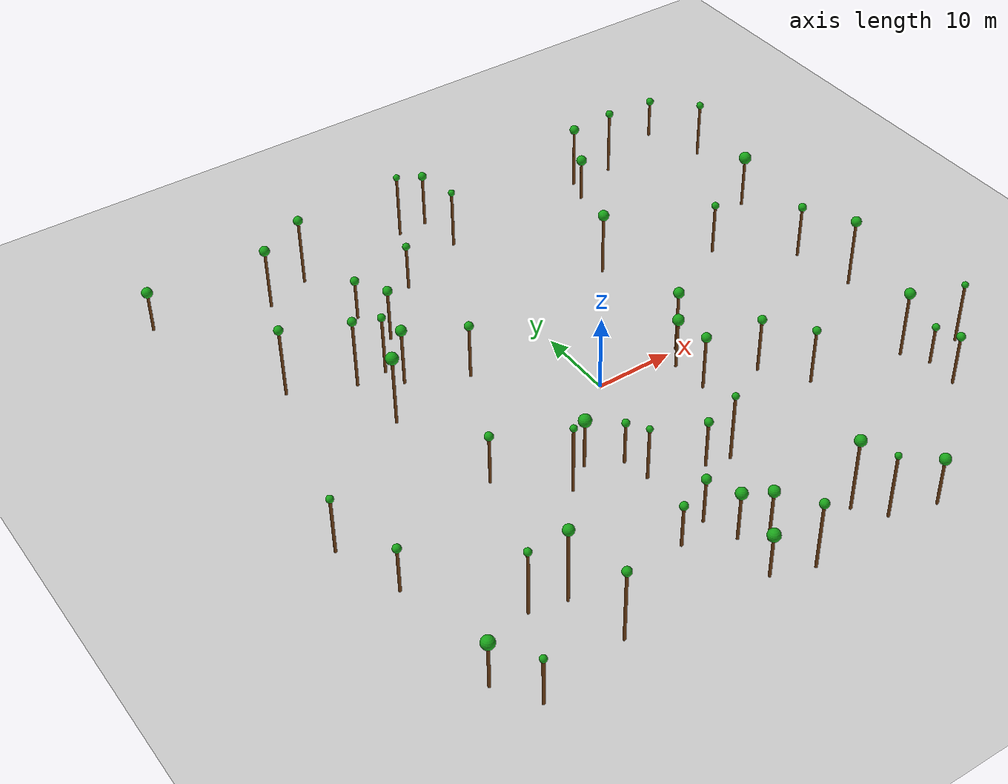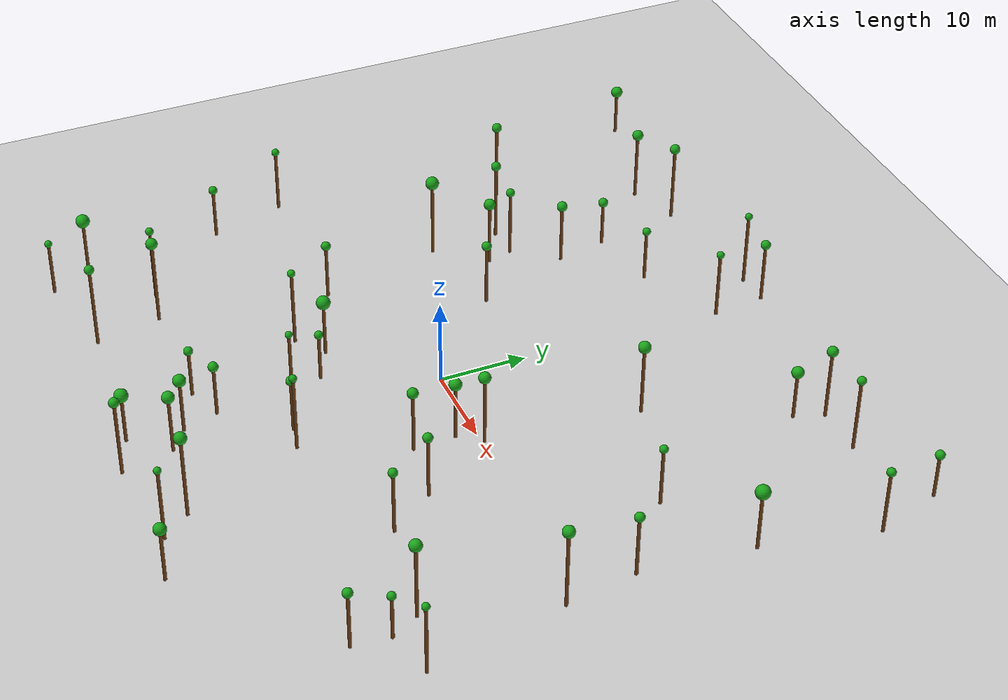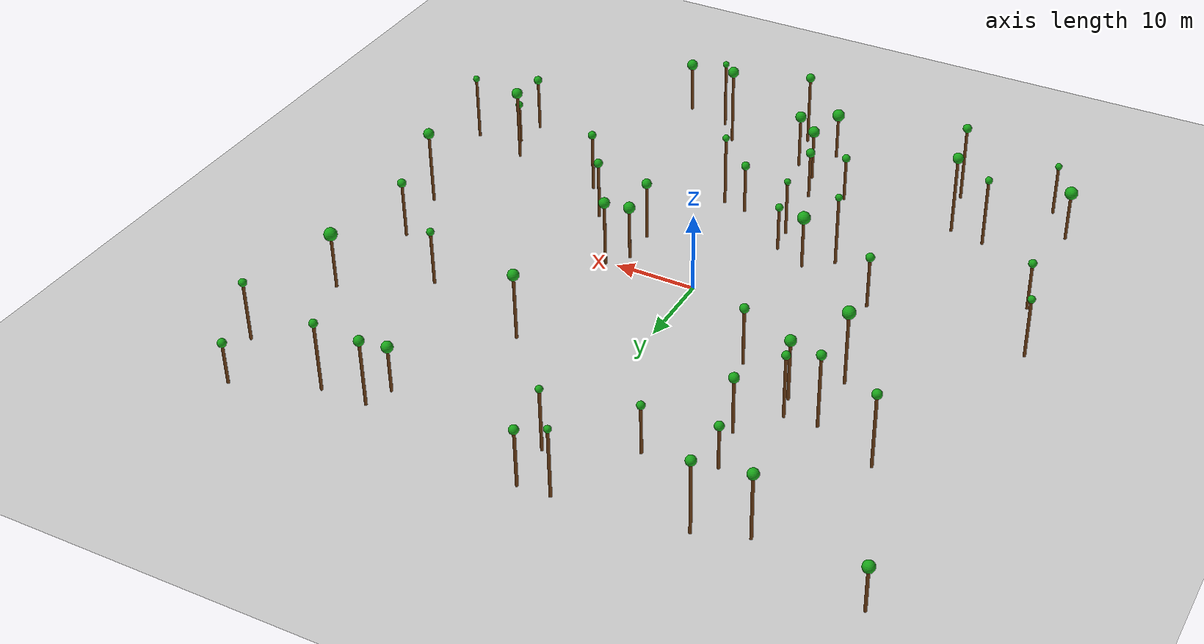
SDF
<sdf version="1.6">
 <world name="forest_world">
  <include><uri>model://sun</uri></include>
  <include><uri>model://ground_plane</uri></include>
  <model name="tree_286">
   <static>true</static>
   <link name="tree_link">
    <collision name="trunk_collision">
     <pose>-35.17 -29.68 3.05 0 0 0</pose>
     <geometry><cylinder><radius>0.18</radius><length>6.10</length></cylinder></geometry>
    </collision>
    <visual name="trunk_visual">
     <pose>-35.17 -29.68 3.05 0 0 0</pose>
     <geometry><cylinder><radius>0.18</radius><length>6.10</length></cylinder></geometry>
     <material><ambient>0.35 0.20 0.05 1</ambient><diffuse>0.45 0.25 0.08 1</diffuse></material>
    </visual>
    <visual name="leaf_visual">
     <pose>-35.17 -29.68 6.50 0 0 0</pose>
     <geometry><sphere><radius>0.79</radius></sphere></geometry>
     <material><ambient>0.05 0.45 0.05 1</ambient><diffuse>0.10 0.65 0.10 1</diffuse></material>
    </visual>
   </link>
  </model>
  <model name="tree_287">
   <static>true</static>
   <link name="tree_link">
    <collision name="trunk_collision">
     <pose>20.73 -13.46 3.73 0 0 0</pose>
     <geometry><cylinder><radius>0.18</radius><length>7.46</length></cylinder></geometry>
    </collision>
    <visual name="trunk_visual">
     <pose>20.73 -13.46 3.73 0 0 0</pose>
     <geometry><cylinder><radius>0.18</radius><length>7.46</length></cylinder></geometry>
     <material><ambient>0.35 0.20 0.05 1</ambient><diffuse>0.45 0.25 0.08 1</diffuse></material>
    </visual>
    <visual name="leaf_visual">
     <pose>20.73 -13.46 7.71 0 0 0</pose>
     <geometry><sphere><radius>0.51</radius></sphere></geometry>
     <material><ambient>0.05 0.45 0.05 1</ambient><diffuse>0.10 0.65 0.10 1</diffuse></material>
    </visual>
   </link>
  </model>
  <model name="tree_288">
   <static>true</static>
   <link name="tree_link">
    <collision name="trunk_collision">
     <pose>-32.03 -34.46 3.22 0 0 0</pose>
     <geometry><cylinder><radius>0.18</radius><length>6.44</length></cylinder></geometry>
    </collision>
    <visual name="trunk_visual">
     <pose>-32.03 -34.46 3.22 0 0 0</pose>
     <geometry><cylinder><radius>0.18</radius><length>6.44</length></cylinder></geometry>
     <material><ambient>0.35 0.20 0.05 1</ambient><diffuse>0.45 0.25 0.08 1</diffuse></material>
    </visual>
    <visual name="leaf_visual">
     <pose>-32.03 -34.46 6.65 0 0 0</pose>
     <geometry><sphere><radius>0.42</radius></sphere></geometry>
     <material><ambient>0.05 0.45 0.05 1</ambient><diffuse>0.10 0.65 0.10 1</diffuse></material>
    </visual>
   </link>
  </model>
  <model name="tree_289">
   <static>true</static>
   <link name="tree_link">
    <collision name="trunk_collision">
     <pose>-30.66 19.84 4.64 0 0 0</pose>
     <geometry><cylinder><radius>0.18</radius><length>9.29</length></cylinder></geometry>
    </collision>
    <visual name="trunk_visual">
     <pose>-30.66 19.84 4.64 0 0 0</pose>
     <geometry><cylinder><radius>0.18</radius><length>9.29</length></cylinder></geometry>
     <material><ambient>0.35 0.20 0.05 1</ambient><diffuse>0.45 0.25 0.08 1</diffuse></material>
    </visual>
    <visual name="leaf_visual">
     <pose>-30.66 19.84 9.58 0 0 0</pose>
     <geometry><sphere><radius>0.57</radius></sphere></geometry>
     <material><ambient>0.05 0.45 0.05 1</ambient><diffuse>0.10 0.65 0.10 1</diffuse></material>
    </visual>
   </link>
  </model>
  <model name="tree_290">
   <static>true</static>
   <link name="tree_link">
    <collision name="trunk_collision">
     <pose>-35.79 -13.96 3.02 0 0 0</pose>
     <geometry><cylinder><radius>0.18</radius><length>6.03</length></cylinder></geometry>
    </collision>
    <visual name="trunk_visual">
     <pose>-35.79 -13.96 3.02 0 0 0</pose>
     <geometry><cylinder><radius>0.18</radius><length>6.03</length></cylinder></geometry>
     <material><ambient>0.35 0.20 0.05 1</ambient><diffuse>0.45 0.25 0.08 1</diffuse></material>
    </visual>
    <visual name="leaf_visual">
     <pose>-35.79 -13.96 6.29 0 0 0</pose>
     <geometry><sphere><radius>0.51</radius></sphere></geometry>
     <material><ambient>0.05 0.45 0.05 1</ambient><diffuse>0.10 0.65 0.10 1</diffuse></material>
    </visual>
   </link>
  </model>
  <model name="tree_291">
   <static>true</static>
   <link name="tree_link">
    <collision name="trunk_collision">
     <pose>-2.53 -28.17 3.18 0 0 0</pose>
     <geometry><cylinder><radius>0.18</radius><length>6.35</length></cylinder></geometry>
    </collision>
    <visual name="trunk_visual">
     <pose>-2.53 -28.17 3.18 0 0 0</pose>
     <geometry><cylinder><radius>0.18</radius><length>6.35</length></cylinder></geometry>
     <material><ambient>0.35 0.20 0.05 1</ambient><diffuse>0.45 0.25 0.08 1</diffuse></material>
    </visual>
    <visual name="leaf_visual">
     <pose>-2.53 -28.17 6.71 0 0 0</pose>
     <geometry><sphere><radius>0.71</radius></sphere></geometry>
     <material><ambient>0.05 0.45 0.05 1</ambient><diffuse>0.10 0.65 0.10 1</diffuse></material>
    </visual>
   </link>
  </model>
  <model name="tree_292">
   <static>true</static>
   <link name="tree_link">
    <collision name="trunk_collision">
     <pose>18.57 -36.55 3.14 0 0 0</pose>
     <geometry><cylinder><radius>0.18</radius><length>6.28</length></cylinder></geometry>
    </collision>
    <visual name="trunk_visual">
     <pose>18.57 -36.55 3.14 0 0 0</pose>
     <geometry><cylinder><radius>0.18</radius><length>6.28</length></cylinder></geometry>
     <material><ambient>0.35 0.20 0.05 1</ambient><diffuse>0.45 0.25 0.08 1</diffuse></material>
    </visual>
    <visual name="leaf_visual">
     <pose>18.57 -36.55 6.62 0 0 0</pose>
     <geometry><sphere><radius>0.69</radius></sphere></geometry>
     <material><ambient>0.05 0.45 0.05 1</ambient><diffuse>0.10 0.65 0.10 1</diffuse></material>
    </visual>
   </link>
  </model>
  <model name="tree_293">
   <static>true</static>
   <link name="tree_link">
    <collision name="trunk_collision">
     <pose>16.99 -8.25 3.66 0 0 0</pose>
     <geometry><cylinder><radius>0.18</radius><length>7.33</length></cylinder></geometry>
    </collision>
    <visual name="trunk_visual">
     <pose>16.99 -8.25 3.66 0 0 0</pose>
     <geometry><cylinder><radius>0.18</radius><length>7.33</length></cylinder></geometry>
     <material><ambient>0.35 0.20 0.05 1</ambient><diffuse>0.45 0.25 0.08 1</diffuse></material>
    </visual>
    <visual name="leaf_visual">
     <pose>16.99 -8.25 7.60 0 0 0</pose>
     <geometry><sphere><radius>0.55</radius></sphere></geometry>
     <material><ambient>0.05 0.45 0.05 1</ambient><diffuse>0.10 0.65 0.10 1</diffuse></material>
    </visual>
   </link>
  </model>
  <model name="tree_294">
   <static>true</static>
   <link name="tree_link">
    <collision name="trunk_collision">
     <pose>9.75 -7.00 3.61 0 0 0</pose>
     <geometry><cylinder><radius>0.18</radius><length>7.22</length></cylinder></geometry>
    </collision>
    <visual name="trunk_visual">
     <pose>9.75 -7.00 3.61 0 0 0</pose>
     <geometry><cylinder><radius>0.18</radius><length>7.22</length></cylinder></geometry>
     <material><ambient>0.35 0.20 0.05 1</ambient><diffuse>0.45 0.25 0.08 1</diffuse></material>
    </visual>
    <visual name="leaf_visual">
     <pose>9.75 -7.00 7.53 0 0 0</pose>
     <geometry><sphere><radius>0.61</radius></sphere></geometry>
     <material><ambient>0.05 0.45 0.05 1</ambient><diffuse>0.10 0.65 0.10 1</diffuse></material>
    </visual>
   </link>
  </model>
  <model name="tree_295">
   <static>true</static>
   <link name="tree_link">
    <collision name="trunk_collision">
     <pose>-9.38 -9.84 3.22 0 0 0</pose>
     <geometry><cylinder><radius>0.18</radius><length>6.45</length></cylinder></geometry>
    </collision>
    <visual name="trunk_visual">
     <pose>-9.38 -9.84 3.22 0 0 0</pose>
     <geometry><cylinder><radius>0.18</radius><length>6.45</length></cylinder></geometry>
     <material><ambient>0.35 0.20 0.05 1</ambient><diffuse>0.45 0.25 0.08 1</diffuse></material>
    </visual>
    <visual name="leaf_visual">
     <pose>-9.38 -9.84 6.84 0 0 0</pose>
     <geometry><sphere><radius>0.79</radius></sphere></geometry>
     <material><ambient>0.05 0.45 0.05 1</ambient><diffuse>0.10 0.65 0.10 1</diffuse></material>
    </visual>
   </link>
  </model>
  <model name="tree_296">
   <static>true</static>
   <link name="tree_link">
    <collision name="trunk_collision">
     <pose>-3.91 -24.09 3.00 0 0 0</pose>
     <geometry><cylinder><radius>0.18</radius><length>6.00</length></cylinder></geometry>
    </collision>
    <visual name="trunk_visual">
     <pose>-3.91 -24.09 3.00 0 0 0</pose>
     <geometry><cylinder><radius>0.18</radius><length>6.00</length></cylinder></geometry>
     <material><ambient>0.35 0.20 0.05 1</ambient><diffuse>0.45 0.25 0.08 1</diffuse></material>
    </visual>
    <visual name="leaf_visual">
     <pose>-3.91 -24.09 6.29 0 0 0</pose>
     <geometry><sphere><radius>0.57</radius></sphere></geometry>
     <material><ambient>0.05 0.45 0.05 1</ambient><diffuse>0.10 0.65 0.10 1</diffuse></material>
    </visual>
   </link>
  </model>
  <model name="tree_297">
   <static>true</static>
   <link name="tree_link">
    <collision name="trunk_collision">
     <pose>9.51 -2.18 3.33 0 0 0</pose>
     <geometry><cylinder><radius>0.18</radius><length>6.67</length></cylinder></geometry>
    </collision>
    <visual name="trunk_visual">
     <pose>9.51 -2.18 3.33 0 0 0</pose>
     <geometry><cylinder><radius>0.18</radius><length>6.67</length></cylinder></geometry>
     <material><ambient>0.35 0.20 0.05 1</ambient><diffuse>0.45 0.25 0.08 1</diffuse></material>
    </visual>
    <visual name="leaf_visual">
     <pose>9.51 -2.18 7.02 0 0 0</pose>
     <geometry><sphere><radius>0.71</radius></sphere></geometry>
     <material><ambient>0.05 0.45 0.05 1</ambient><diffuse>0.10 0.65 0.10 1</diffuse></material>
    </visual>
   </link>
  </model>
  <model name="tree_298">
   <static>true</static>
   <link name="tree_link">
    <collision name="trunk_collision">
     <pose>13.29 17.64 4.13 0 0 0</pose>
     <geometry><cylinder><radius>0.18</radius><length>8.27</length></cylinder></geometry>
    </collision>
    <visual name="trunk_visual">
     <pose>13.29 17.64 4.13 0 0 0</pose>
     <geometry><cylinder><radius>0.18</radius><length>8.27</length></cylinder></geometry>
     <material><ambient>0.35 0.20 0.05 1</ambient><diffuse>0.45 0.25 0.08 1</diffuse></material>
    </visual>
    <visual name="leaf_visual">
     <pose>13.29 17.64 8.61 0 0 0</pose>
     <geometry><sphere><radius>0.69</radius></sphere></geometry>
     <material><ambient>0.05 0.45 0.05 1</ambient><diffuse>0.10 0.65 0.10 1</diffuse></material>
    </visual>
   </link>
  </model>
  <model name="tree_299">
   <static>true</static>
   <link name="tree_link">
    <collision name="trunk_collision">
     <pose>-22.68 8.32 4.57 0 0 0</pose>
     <geometry><cylinder><radius>0.18</radius><length>9.15</length></cylinder></geometry>
    </collision>
    <visual name="trunk_visual">
     <pose>-22.68 8.32 4.57 0 0 0</pose>
     <geometry><cylinder><radius>0.18</radius><length>9.15</length></cylinder></geometry>
     <material><ambient>0.35 0.20 0.05 1</ambient><diffuse>0.45 0.25 0.08 1</diffuse></material>
    </visual>
    <visual name="leaf_visual">
     <pose>-22.68 8.32 9.54 0 0 0</pose>
     <geometry><sphere><radius>0.77</radius></sphere></geometry>
     <material><ambient>0.05 0.45 0.05 1</ambient><diffuse>0.10 0.65 0.10 1</diffuse></material>
    </visual>
   </link>
  </model>
  <model name="tree_300">
   <static>true</static>
   <link name="tree_link">
    <collision name="trunk_collision">
     <pose>-16.71 27.29 2.68 0 0 0</pose>
     <geometry><cylinder><radius>0.18</radius><length>5.37</length></cylinder></geometry>
    </collision>
    <visual name="trunk_visual">
     <pose>-16.71 27.29 2.68 0 0 0</pose>
     <geometry><cylinder><radius>0.18</radius><length>5.37</length></cylinder></geometry>
     <material><ambient>0.35 0.20 0.05 1</ambient><diffuse>0.45 0.25 0.08 1</diffuse></material>
    </visual>
    <visual name="leaf_visual">
     <pose>-16.71 27.29 5.64 0 0 0</pose>
     <geometry><sphere><radius>0.55</radius></sphere></geometry>
     <material><ambient>0.05 0.45 0.05 1</ambient><diffuse>0.10 0.65 0.10 1</diffuse></material>
    </visual>
   </link>
  </model>
  <model name="tree_301">
   <static>true</static>
   <link name="tree_link">
    <collision name="trunk_collision">
     <pose>37.01 39.07 2.58 0 0 0</pose>
     <geometry><cylinder><radius>0.18</radius><length>5.16</length></cylinder></geometry>
    </collision>
    <visual name="trunk_visual">
     <pose>37.01 39.07 2.58 0 0 0</pose>
     <geometry><cylinder><radius>0.18</radius><length>5.16</length></cylinder></geometry>
     <material><ambient>0.35 0.20 0.05 1</ambient><diffuse>0.45 0.25 0.08 1</diffuse></material>
    </visual>
    <visual name="leaf_visual">
     <pose>37.01 39.07 5.42 0 0 0</pose>
     <geometry><sphere><radius>0.53</radius></sphere></geometry>
     <material><ambient>0.05 0.45 0.05 1</ambient><diffuse>0.10 0.65 0.10 1</diffuse></material>
    </visual>
   </link>
  </model>
  <model name="tree_302">
   <static>true</static>
   <link name="tree_link">
    <collision name="trunk_collision">
     <pose>10.35 -31.74 4.85 0 0 0</pose>
     <geometry><cylinder><radius>0.18</radius><length>9.69</length></cylinder></geometry>
    </collision>
    <visual name="trunk_visual">
     <pose>10.35 -31.74 4.85 0 0 0</pose>
     <geometry><cylinder><radius>0.18</radius><length>9.69</length></cylinder></geometry>
     <material><ambient>0.35 0.20 0.05 1</ambient><diffuse>0.45 0.25 0.08 1</diffuse></material>
    </visual>
    <visual name="leaf_visual">
     <pose>10.35 -31.74 10.04 0 0 0</pose>
     <geometry><sphere><radius>0.69</radius></sphere></geometry>
     <material><ambient>0.05 0.45 0.05 1</ambient><diffuse>0.10 0.65 0.10 1</diffuse></material>
    </visual>
   </link>
  </model>
  <model name="tree_303">
   <static>true</static>
   <link name="tree_link">
    <collision name="trunk_collision">
     <pose>21.51 35.35 4.14 0 0 0</pose>
     <geometry><cylinder><radius>0.18</radius><length>8.29</length></cylinder></geometry>
    </collision>
    <visual name="trunk_visual">
     <pose>21.51 35.35 4.14 0 0 0</pose>
     <geometry><cylinder><radius>0.18</radius><length>8.29</length></cylinder></geometry>
     <material><ambient>0.35 0.20 0.05 1</ambient><diffuse>0.45 0.25 0.08 1</diffuse></material>
    </visual>
    <visual name="leaf_visual">
     <pose>21.51 35.35 8.59 0 0 0</pose>
     <geometry><sphere><radius>0.61</radius></sphere></geometry>
     <material><ambient>0.05 0.45 0.05 1</ambient><diffuse>0.10 0.65 0.10 1</diffuse></material>
    </visual>
   </link>
  </model>
  <model name="tree_304">
   <static>true</static>
   <link name="tree_link">
    <collision name="trunk_collision">
     <pose>36.95 18.77 3.47 0 0 0</pose>
     <geometry><cylinder><radius>0.18</radius><length>6.94</length></cylinder></geometry>
    </collision>
    <visual name="trunk_visual">
     <pose>36.95 18.77 3.47 0 0 0</pose>
     <geometry><cylinder><radius>0.18</radius><length>6.94</length></cylinder></geometry>
     <material><ambient>0.35 0.20 0.05 1</ambient><diffuse>0.45 0.25 0.08 1</diffuse></material>
    </visual>
    <visual name="leaf_visual">
     <pose>36.95 18.77 7.34 0 0 0</pose>
     <geometry><sphere><radius>0.80</radius></sphere></geometry>
     <material><ambient>0.05 0.45 0.05 1</ambient><diffuse>0.10 0.65 0.10 1</diffuse></material>
    </visual>
   </link>
  </model>
  <model name="tree_305">
   <static>true</static>
   <link name="tree_link">
    <collision name="trunk_collision">
     <pose>-19.32 -5.94 3.28 0 0 0</pose>
     <geometry><cylinder><radius>0.18</radius><length>6.56</length></cylinder></geometry>
    </collision>
    <visual name="trunk_visual">
     <pose>-19.32 -5.94 3.28 0 0 0</pose>
     <geometry><cylinder><radius>0.18</radius><length>6.56</length></cylinder></geometry>
     <material><ambient>0.35 0.20 0.05 1</ambient><diffuse>0.45 0.25 0.08 1</diffuse></material>
    </visual>
    <visual name="leaf_visual">
     <pose>-19.32 -5.94 6.83 0 0 0</pose>
     <geometry><sphere><radius>0.54</radius></sphere></geometry>
     <material><ambient>0.05 0.45 0.05 1</ambient><diffuse>0.10 0.65 0.10 1</diffuse></material>
    </visual>
   </link>
  </model>
  <model name="tree_306">
   <static>true</static>
   <link name="tree_link">
    <collision name="trunk_collision">
     <pose>-4.77 -15.36 3.56 0 0 0</pose>
     <geometry><cylinder><radius>0.18</radius><length>7.13</length></cylinder></geometry>
    </collision>
    <visual name="trunk_visual">
     <pose>-4.77 -15.36 3.56 0 0 0</pose>
     <geometry><cylinder><radius>0.18</radius><length>7.13</length></cylinder></geometry>
     <material><ambient>0.35 0.20 0.05 1</ambient><diffuse>0.45 0.25 0.08 1</diffuse></material>
    </visual>
    <visual name="leaf_visual">
     <pose>-4.77 -15.36 7.34 0 0 0</pose>
     <geometry><sphere><radius>0.41</radius></sphere></geometry>
     <material><ambient>0.05 0.45 0.05 1</ambient><diffuse>0.10 0.65 0.10 1</diffuse></material>
    </visual>
   </link>
  </model>
  <model name="tree_307">
   <static>true</static>
   <link name="tree_link">
    <collision name="trunk_collision">
     <pose>-3.51 39.02 4.31 0 0 0</pose>
     <geometry><cylinder><radius>0.18</radius><length>8.62</length></cylinder></geometry>
    </collision>
    <visual name="trunk_visual">
     <pose>-3.51 39.02 4.31 0 0 0</pose>
     <geometry><cylinder><radius>0.18</radius><length>8.62</length></cylinder></geometry>
     <material><ambient>0.35 0.20 0.05 1</ambient><diffuse>0.45 0.25 0.08 1</diffuse></material>
    </visual>
    <visual name="leaf_visual">
     <pose>-3.51 39.02 8.83 0 0 0</pose>
     <geometry><sphere><radius>0.42</radius></sphere></geometry>
     <material><ambient>0.05 0.45 0.05 1</ambient><diffuse>0.10 0.65 0.10 1</diffuse></material>
    </visual>
   </link>
  </model>
  <model name="tree_308">
   <static>true</static>
   <link name="tree_link">
    <collision name="trunk_collision">
     <pose>11.44 0.30 4.10 0 0 0</pose>
     <geometry><cylinder><radius>0.18</radius><length>8.21</length></cylinder></geometry>
    </collision>
    <visual name="trunk_visual">
     <pose>11.44 0.30 4.10 0 0 0</pose>
     <geometry><cylinder><radius>0.18</radius><length>8.21</length></cylinder></geometry>
     <material><ambient>0.35 0.20 0.05 1</ambient><diffuse>0.45 0.25 0.08 1</diffuse></material>
    </visual>
    <visual name="leaf_visual">
     <pose>11.44 0.30 8.54 0 0 0</pose>
     <geometry><sphere><radius>0.67</radius></sphere></geometry>
     <material><ambient>0.05 0.45 0.05 1</ambient><diffuse>0.10 0.65 0.10 1</diffuse></material>
    </visual>
   </link>
  </model>
  <model name="tree_309">
   <static>true</static>
   <link name="tree_link">
    <collision name="trunk_collision">
     <pose>39.98 -17.72 4.12 0 0 0</pose>
     <geometry><cylinder><radius>0.18</radius><length>8.23</length></cylinder></geometry>
    </collision>
    <visual name="trunk_visual">
     <pose>39.98 -17.72 4.12 0 0 0</pose>
     <geometry><cylinder><radius>0.18</radius><length>8.23</length></cylinder></geometry>
     <material><ambient>0.35 0.20 0.05 1</ambient><diffuse>0.45 0.25 0.08 1</diffuse></material>
    </visual>
    <visual name="leaf_visual">
     <pose>39.98 -17.72 8.44 0 0 0</pose>
     <geometry><sphere><radius>0.42</radius></sphere></geometry>
     <material><ambient>0.05 0.45 0.05 1</ambient><diffuse>0.10 0.65 0.10 1</diffuse></material>
    </visual>
   </link>
  </model>
  <model name="tree_310">
   <static>true</static>
   <link name="tree_link">
    <collision name="trunk_collision">
     <pose>-38.17 39.42 2.70 0 0 0</pose>
     <geometry><cylinder><radius>0.18</radius><length>5.40</length></cylinder></geometry>
    </collision>
    <visual name="trunk_visual">
     <pose>-38.17 39.42 2.70 0 0 0</pose>
     <geometry><cylinder><radius>0.18</radius><length>5.40</length></cylinder></geometry>
     <material><ambient>0.35 0.20 0.05 1</ambient><diffuse>0.45 0.25 0.08 1</diffuse></material>
    </visual>
    <visual name="leaf_visual">
     <pose>-38.17 39.42 5.74 0 0 0</pose>
     <geometry><sphere><radius>0.68</radius></sphere></geometry>
     <material><ambient>0.05 0.45 0.05 1</ambient><diffuse>0.10 0.65 0.10 1</diffuse></material>
    </visual>
   </link>
  </model>
  <model name="tree_311">
   <static>true</static>
   <link name="tree_link">
    <collision name="trunk_collision">
     <pose>-8.04 -25.56 2.81 0 0 0</pose>
     <geometry><cylinder><radius>0.18</radius><length>5.62</length></cylinder></geometry>
    </collision>
    <visual name="trunk_visual">
     <pose>-8.04 -25.56 2.81 0 0 0</pose>
     <geometry><cylinder><radius>0.18</radius><length>5.62</length></cylinder></geometry>
     <material><ambient>0.35 0.20 0.05 1</ambient><diffuse>0.45 0.25 0.08 1</diffuse></material>
    </visual>
    <visual name="leaf_visual">
     <pose>-8.04 -25.56 5.88 0 0 0</pose>
     <geometry><sphere><radius>0.51</radius></sphere></geometry>
     <material><ambient>0.05 0.45 0.05 1</ambient><diffuse>0.10 0.65 0.10 1</diffuse></material>
    </visual>
   </link>
  </model>
  <model name="tree_312">
   <static>true</static>
   <link name="tree_link">
    <collision name="trunk_collision">
     <pose>1.74 -17.46 3.12 0 0 0</pose>
     <geometry><cylinder><radius>0.18</radius><length>6.24</length></cylinder></geometry>
    </collision>
    <visual name="trunk_visual">
     <pose>1.74 -17.46 3.12 0 0 0</pose>
     <geometry><cylinder><radius>0.18</radius><length>6.24</length></cylinder></geometry>
     <material><ambient>0.35 0.20 0.05 1</ambient><diffuse>0.45 0.25 0.08 1</diffuse></material>
    </visual>
    <visual name="leaf_visual">
     <pose>1.74 -17.46 6.50 0 0 0</pose>
     <geometry><sphere><radius>0.53</radius></sphere></geometry>
     <material><ambient>0.05 0.45 0.05 1</ambient><diffuse>0.10 0.65 0.10 1</diffuse></material>
    </visual>
   </link>
  </model>
  <model name="tree_313">
   <static>true</static>
   <link name="tree_link">
    <collision name="trunk_collision">
     <pose>-3.25 -34.26 2.85 0 0 0</pose>
     <geometry><cylinder><radius>0.18</radius><length>5.70</length></cylinder></geometry>
    </collision>
    <visual name="trunk_visual">
     <pose>-3.25 -34.26 2.85 0 0 0</pose>
     <geometry><cylinder><radius>0.18</radius><length>5.70</length></cylinder></geometry>
     <material><ambient>0.35 0.20 0.05 1</ambient><diffuse>0.45 0.25 0.08 1</diffuse></material>
    </visual>
    <visual name="leaf_visual">
     <pose>-3.25 -34.26 6.09 0 0 0</pose>
     <geometry><sphere><radius>0.77</radius></sphere></geometry>
     <material><ambient>0.05 0.45 0.05 1</ambient><diffuse>0.10 0.65 0.10 1</diffuse></material>
    </visual>
   </link>
  </model>
  <model name="tree_314">
   <static>true</static>
   <link name="tree_link">
    <collision name="trunk_collision">
     <pose>12.91 -34.92 4.37 0 0 0</pose>
     <geometry><cylinder><radius>0.18</radius><length>8.73</length></cylinder></geometry>
    </collision>
    <visual name="trunk_visual">
     <pose>12.91 -34.92 4.37 0 0 0</pose>
     <geometry><cylinder><radius>0.18</radius><length>8.73</length></cylinder></geometry>
     <material><ambient>0.35 0.20 0.05 1</ambient><diffuse>0.45 0.25 0.08 1</diffuse></material>
    </visual>
    <visual name="leaf_visual">
     <pose>12.91 -34.92 8.94 0 0 0</pose>
     <geometry><sphere><radius>0.41</radius></sphere></geometry>
     <material><ambient>0.05 0.45 0.05 1</ambient><diffuse>0.10 0.65 0.10 1</diffuse></material>
    </visual>
   </link>
  </model>
  <model name="tree_315">
   <static>true</static>
   <link name="tree_link">
    <collision name="trunk_collision">
     <pose>39.63 31.51 3.75 0 0 0</pose>
     <geometry><cylinder><radius>0.18</radius><length>7.51</length></cylinder></geometry>
    </collision>
    <visual name="trunk_visual">
     <pose>39.63 31.51 3.75 0 0 0</pose>
     <geometry><cylinder><radius>0.18</radius><length>7.51</length></cylinder></geometry>
     <material><ambient>0.35 0.20 0.05 1</ambient><diffuse>0.45 0.25 0.08 1</diffuse></material>
    </visual>
    <visual name="leaf_visual">
     <pose>39.63 31.51 7.75 0 0 0</pose>
     <geometry><sphere><radius>0.49</radius></sphere></geometry>
     <material><ambient>0.05 0.45 0.05 1</ambient><diffuse>0.10 0.65 0.10 1</diffuse></material>
    </visual>
   </link>
  </model>
  <model name="tree_316">
   <static>true</static>
   <link name="tree_link">
    <collision name="trunk_collision">
     <pose>-22.38 -24.98 5.00 0 0 0</pose>
     <geometry><cylinder><radius>0.18</radius><length>9.99</length></cylinder></geometry>
    </collision>
    <visual name="trunk_visual">
     <pose>-22.38 -24.98 5.00 0 0 0</pose>
     <geometry><cylinder><radius>0.18</radius><length>9.99</length></cylinder></geometry>
     <material><ambient>0.35 0.20 0.05 1</ambient><diffuse>0.45 0.25 0.08 1</diffuse></material>
    </visual>
    <visual name="leaf_visual">
     <pose>-22.38 -24.98 10.32 0 0 0</pose>
     <geometry><sphere><radius>0.66</radius></sphere></geometry>
     <material><ambient>0.05 0.45 0.05 1</ambient><diffuse>0.10 0.65 0.10 1</diffuse></material>
    </visual>
   </link>
  </model>
  <model name="tree_317">
   <static>true</static>
   <link name="tree_link">
    <collision name="trunk_collision">
     <pose>36.97 -2.06 4.60 0 0 0</pose>
     <geometry><cylinder><radius>0.18</radius><length>9.20</length></cylinder></geometry>
    </collision>
    <visual name="trunk_visual">
     <pose>36.97 -2.06 4.60 0 0 0</pose>
     <geometry><cylinder><radius>0.18</radius><length>9.20</length></cylinder></geometry>
     <material><ambient>0.35 0.20 0.05 1</ambient><diffuse>0.45 0.25 0.08 1</diffuse></material>
    </visual>
    <visual name="leaf_visual">
     <pose>36.97 -2.06 9.53 0 0 0</pose>
     <geometry><sphere><radius>0.66</radius></sphere></geometry>
     <material><ambient>0.05 0.45 0.05 1</ambient><diffuse>0.10 0.65 0.10 1</diffuse></material>
    </visual>
   </link>
  </model>
  <model name="tree_318">
   <static>true</static>
   <link name="tree_link">
    <collision name="trunk_collision">
     <pose>-18.36 13.65 3.78 0 0 0</pose>
     <geometry><cylinder><radius>0.18</radius><length>7.56</length></cylinder></geometry>
    </collision>
    <visual name="trunk_visual">
     <pose>-18.36 13.65 3.78 0 0 0</pose>
     <geometry><cylinder><radius>0.18</radius><length>7.56</length></cylinder></geometry>
     <material><ambient>0.35 0.20 0.05 1</ambient><diffuse>0.45 0.25 0.08 1</diffuse></material>
    </visual>
    <visual name="leaf_visual">
     <pose>-18.36 13.65 7.90 0 0 0</pose>
     <geometry><sphere><radius>0.67</radius></sphere></geometry>
     <material><ambient>0.05 0.45 0.05 1</ambient><diffuse>0.10 0.65 0.10 1</diffuse></material>
    </visual>
   </link>
  </model>
  <model name="tree_319">
   <static>true</static>
   <link name="tree_link">
    <collision name="trunk_collision">
     <pose>-15.52 21.46 3.53 0 0 0</pose>
     <geometry><cylinder><radius>0.18</radius><length>7.05</length></cylinder></geometry>
    </collision>
    <visual name="trunk_visual">
     <pose>-15.52 21.46 3.53 0 0 0</pose>
     <geometry><cylinder><radius>0.18</radius><length>7.05</length></cylinder></geometry>
     <material><ambient>0.35 0.20 0.05 1</ambient><diffuse>0.45 0.25 0.08 1</diffuse></material>
    </visual>
    <visual name="leaf_visual">
     <pose>-15.52 21.46 7.35 0 0 0</pose>
     <geometry><sphere><radius>0.60</radius></sphere></geometry>
     <material><ambient>0.05 0.45 0.05 1</ambient><diffuse>0.10 0.65 0.10 1</diffuse></material>
    </visual>
   </link>
  </model>
  <model name="tree_320">
   <static>true</static>
   <link name="tree_link">
    <collision name="trunk_collision">
     <pose>32.79 -15.84 4.42 0 0 0</pose>
     <geometry><cylinder><radius>0.18</radius><length>8.84</length></cylinder></geometry>
    </collision>
    <visual name="trunk_visual">
     <pose>32.79 -15.84 4.42 0 0 0</pose>
     <geometry><cylinder><radius>0.18</radius><length>8.84</length></cylinder></geometry>
     <material><ambient>0.35 0.20 0.05 1</ambient><diffuse>0.45 0.25 0.08 1</diffuse></material>
    </visual>
    <visual name="leaf_visual">
     <pose>32.79 -15.84 9.17 0 0 0</pose>
     <geometry><sphere><radius>0.68</radius></sphere></geometry>
     <material><ambient>0.05 0.45 0.05 1</ambient><diffuse>0.10 0.65 0.10 1</diffuse></material>
    </visual>
   </link>
  </model>
  <model name="tree_321">
   <static>true</static>
   <link name="tree_link">
    <collision name="trunk_collision">
     <pose>-19.18 16.59 3.99 0 0 0</pose>
     <geometry><cylinder><radius>0.18</radius><length>7.99</length></cylinder></geometry>
    </collision>
    <visual name="trunk_visual">
     <pose>-19.18 16.59 3.99 0 0 0</pose>
     <geometry><cylinder><radius>0.18</radius><length>7.99</length></cylinder></geometry>
     <material><ambient>0.35 0.20 0.05 1</ambient><diffuse>0.45 0.25 0.08 1</diffuse></material>
    </visual>
    <visual name="leaf_visual">
     <pose>-19.18 16.59 8.24 0 0 0</pose>
     <geometry><sphere><radius>0.50</radius></sphere></geometry>
     <material><ambient>0.05 0.45 0.05 1</ambient><diffuse>0.10 0.65 0.10 1</diffuse></material>
    </visual>
   </link>
  </model>
  <model name="tree_322">
   <static>true</static>
   <link name="tree_link">
    <collision name="trunk_collision">
     <pose>-20.77 -32.48 4.84 0 0 0</pose>
     <geometry><cylinder><radius>0.18</radius><length>9.68</length></cylinder></geometry>
    </collision>
    <visual name="trunk_visual">
     <pose>-20.77 -32.48 4.84 0 0 0</pose>
     <geometry><cylinder><radius>0.18</radius><length>9.68</length></cylinder></geometry>
     <material><ambient>0.35 0.20 0.05 1</ambient><diffuse>0.45 0.25 0.08 1</diffuse></material>
    </visual>
    <visual name="leaf_visual">
     <pose>-20.77 -32.48 9.96 0 0 0</pose>
     <geometry><sphere><radius>0.55</radius></sphere></geometry>
     <material><ambient>0.05 0.45 0.05 1</ambient><diffuse>0.10 0.65 0.10 1</diffuse></material>
    </visual>
   </link>
  </model>
  <model name="tree_323">
   <static>true</static>
   <link name="tree_link">
    <collision name="trunk_collision">
     <pose>-8.50 28.80 3.06 0 0 0</pose>
     <geometry><cylinder><radius>0.18</radius><length>6.12</length></cylinder></geometry>
    </collision>
    <visual name="trunk_visual">
     <pose>-8.50 28.80 3.06 0 0 0</pose>
     <geometry><cylinder><radius>0.18</radius><length>6.12</length></cylinder></geometry>
     <material><ambient>0.35 0.20 0.05 1</ambient><diffuse>0.45 0.25 0.08 1</diffuse></material>
    </visual>
    <visual name="leaf_visual">
     <pose>-8.50 28.80 6.36 0 0 0</pose>
     <geometry><sphere><radius>0.48</radius></sphere></geometry>
     <material><ambient>0.05 0.45 0.05 1</ambient><diffuse>0.10 0.65 0.10 1</diffuse></material>
    </visual>
   </link>
  </model>
  <model name="tree_324">
   <static>true</static>
   <link name="tree_link">
    <collision name="trunk_collision">
     <pose>0.16 -30.16 3.38 0 0 0</pose>
     <geometry><cylinder><radius>0.18</radius><length>6.75</length></cylinder></geometry>
    </collision>
    <visual name="trunk_visual">
     <pose>0.16 -30.16 3.38 0 0 0</pose>
     <geometry><cylinder><radius>0.18</radius><length>6.75</length></cylinder></geometry>
     <material><ambient>0.35 0.20 0.05 1</ambient><diffuse>0.45 0.25 0.08 1</diffuse></material>
    </visual>
    <visual name="leaf_visual">
     <pose>0.16 -30.16 7.10 0 0 0</pose>
     <geometry><sphere><radius>0.69</radius></sphere></geometry>
     <material><ambient>0.05 0.45 0.05 1</ambient><diffuse>0.10 0.65 0.10 1</diffuse></material>
    </visual>
   </link>
  </model>
  <model name="tree_325">
   <static>true</static>
   <link name="tree_link">
    <collision name="trunk_collision">
     <pose>-26.66 -24.06 4.38 0 0 0</pose>
     <geometry><cylinder><radius>0.18</radius><length>8.76</length></cylinder></geometry>
    </collision>
    <visual name="trunk_visual">
     <pose>-26.66 -24.06 4.38 0 0 0</pose>
     <geometry><cylinder><radius>0.18</radius><length>8.76</length></cylinder></geometry>
     <material><ambient>0.35 0.20 0.05 1</ambient><diffuse>0.45 0.25 0.08 1</diffuse></material>
    </visual>
    <visual name="leaf_visual">
     <pose>-26.66 -24.06 8.99 0 0 0</pose>
     <geometry><sphere><radius>0.46</radius></sphere></geometry>
     <material><ambient>0.05 0.45 0.05 1</ambient><diffuse>0.10 0.65 0.10 1</diffuse></material>
    </visual>
   </link>
  </model>
  <model name="tree_326">
   <static>true</static>
   <link name="tree_link">
    <collision name="trunk_collision">
     <pose>34.14 -23.18 3.37 0 0 0</pose>
     <geometry><cylinder><radius>0.18</radius><length>6.74</length></cylinder></geometry>
    </collision>
    <visual name="trunk_visual">
     <pose>34.14 -23.18 3.37 0 0 0</pose>
     <geometry><cylinder><radius>0.18</radius><length>6.74</length></cylinder></geometry>
     <material><ambient>0.35 0.20 0.05 1</ambient><diffuse>0.45 0.25 0.08 1</diffuse></material>
    </visual>
    <visual name="leaf_visual">
     <pose>34.14 -23.18 7.01 0 0 0</pose>
     <geometry><sphere><radius>0.54</radius></sphere></geometry>
     <material><ambient>0.05 0.45 0.05 1</ambient><diffuse>0.10 0.65 0.10 1</diffuse></material>
    </visual>
   </link>
  </model>
  <model name="tree_327">
   <static>true</static>
   <link name="tree_link">
    <collision name="trunk_collision">
     <pose>-5.33 -11.87 2.82 0 0 0</pose>
     <geometry><cylinder><radius>0.18</radius><length>5.64</length></cylinder></geometry>
    </collision>
    <visual name="trunk_visual">
     <pose>-5.33 -11.87 2.82 0 0 0</pose>
     <geometry><cylinder><radius>0.18</radius><length>5.64</length></cylinder></geometry>
     <material><ambient>0.35 0.20 0.05 1</ambient><diffuse>0.45 0.25 0.08 1</diffuse></material>
    </visual>
    <visual name="leaf_visual">
     <pose>-5.33 -11.87 5.88 0 0 0</pose>
     <geometry><sphere><radius>0.48</radius></sphere></geometry>
     <material><ambient>0.05 0.45 0.05 1</ambient><diffuse>0.10 0.65 0.10 1</diffuse></material>
    </visual>
   </link>
  </model>
  <model name="tree_328">
   <static>true</static>
   <link name="tree_link">
    <collision name="trunk_collision">
     <pose>-23.06 16.45 4.63 0 0 0</pose>
     <geometry><cylinder><radius>0.18</radius><length>9.27</length></cylinder></geometry>
    </collision>
    <visual name="trunk_visual">
     <pose>-23.06 16.45 4.63 0 0 0</pose>
     <geometry><cylinder><radius>0.18</radius><length>9.27</length></cylinder></geometry>
     <material><ambient>0.35 0.20 0.05 1</ambient><diffuse>0.45 0.25 0.08 1</diffuse></material>
    </visual>
    <visual name="leaf_visual">
     <pose>-23.06 16.45 9.55 0 0 0</pose>
     <geometry><sphere><radius>0.56</radius></sphere></geometry>
     <material><ambient>0.05 0.45 0.05 1</ambient><diffuse>0.10 0.65 0.10 1</diffuse></material>
    </visual>
   </link>
  </model>
  <model name="tree_329">
   <static>true</static>
   <link name="tree_link">
    <collision name="trunk_collision">
     <pose>-18.53 37.34 4.55 0 0 0</pose>
     <geometry><cylinder><radius>0.18</radius><length>9.09</length></cylinder></geometry>
    </collision>
    <visual name="trunk_visual">
     <pose>-18.53 37.34 4.55 0 0 0</pose>
     <geometry><cylinder><radius>0.18</radius><length>9.09</length></cylinder></geometry>
     <material><ambient>0.35 0.20 0.05 1</ambient><diffuse>0.45 0.25 0.08 1</diffuse></material>
    </visual>
    <visual name="leaf_visual">
     <pose>-18.53 37.34 9.38 0 0 0</pose>
     <geometry><sphere><radius>0.59</radius></sphere></geometry>
     <material><ambient>0.05 0.45 0.05 1</ambient><diffuse>0.10 0.65 0.10 1</diffuse></material>
    </visual>
   </link>
  </model>
  <model name="tree_330">
   <static>true</static>
   <link name="tree_link">
    <collision name="trunk_collision">
     <pose>27.27 35.37 4.33 0 0 0</pose>
     <geometry><cylinder><radius>0.18</radius><length>8.67</length></cylinder></geometry>
    </collision>
    <visual name="trunk_visual">
     <pose>27.27 35.37 4.33 0 0 0</pose>
     <geometry><cylinder><radius>0.18</radius><length>8.67</length></cylinder></geometry>
     <material><ambient>0.35 0.20 0.05 1</ambient><diffuse>0.45 0.25 0.08 1</diffuse></material>
    </visual>
    <visual name="leaf_visual">
     <pose>27.27 35.37 8.92 0 0 0</pose>
     <geometry><sphere><radius>0.50</radius></sphere></geometry>
     <material><ambient>0.05 0.45 0.05 1</ambient><diffuse>0.10 0.65 0.10 1</diffuse></material>
    </visual>
   </link>
  </model>
  <model name="tree_331">
   <static>true</static>
   <link name="tree_link">
    <collision name="trunk_collision">
     <pose>0.94 33.13 3.93 0 0 0</pose>
     <geometry><cylinder><radius>0.18</radius><length>7.87</length></cylinder></geometry>
    </collision>
    <visual name="trunk_visual">
     <pose>0.94 33.13 3.93 0 0 0</pose>
     <geometry><cylinder><radius>0.18</radius><length>7.87</length></cylinder></geometry>
     <material><ambient>0.35 0.20 0.05 1</ambient><diffuse>0.45 0.25 0.08 1</diffuse></material>
    </visual>
    <visual name="leaf_visual">
     <pose>0.94 33.13 8.08 0 0 0</pose>
     <geometry><sphere><radius>0.43</radius></sphere></geometry>
     <material><ambient>0.05 0.45 0.05 1</ambient><diffuse>0.10 0.65 0.10 1</diffuse></material>
    </visual>
   </link>
  </model>
  <model name="tree_332">
   <static>true</static>
   <link name="tree_link">
    <collision name="trunk_collision">
     <pose>-12.64 -12.25 4.50 0 0 0</pose>
     <geometry><cylinder><radius>0.18</radius><length>9.01</length></cylinder></geometry>
    </collision>
    <visual name="trunk_visual">
     <pose>-12.64 -12.25 4.50 0 0 0</pose>
     <geometry><cylinder><radius>0.18</radius><length>9.01</length></cylinder></geometry>
     <material><ambient>0.35 0.20 0.05 1</ambient><diffuse>0.45 0.25 0.08 1</diffuse></material>
    </visual>
    <visual name="leaf_visual">
     <pose>-12.64 -12.25 9.23 0 0 0</pose>
     <geometry><sphere><radius>0.44</radius></sphere></geometry>
     <material><ambient>0.05 0.45 0.05 1</ambient><diffuse>0.10 0.65 0.10 1</diffuse></material>
    </visual>
   </link>
  </model>
  <model name="tree_333">
   <static>true</static>
   <link name="tree_link">
    <collision name="trunk_collision">
     <pose>20.39 32.10 2.83 0 0 0</pose>
     <geometry><cylinder><radius>0.18</radius><length>5.65</length></cylinder></geometry>
    </collision>
    <visual name="trunk_visual">
     <pose>20.39 32.10 2.83 0 0 0</pose>
     <geometry><cylinder><radius>0.18</radius><length>5.65</length></cylinder></geometry>
     <material><ambient>0.35 0.20 0.05 1</ambient><diffuse>0.45 0.25 0.08 1</diffuse></material>
    </visual>
    <visual name="leaf_visual">
     <pose>20.39 32.10 5.99 0 0 0</pose>
     <geometry><sphere><radius>0.68</radius></sphere></geometry>
     <material><ambient>0.05 0.45 0.05 1</ambient><diffuse>0.10 0.65 0.10 1</diffuse></material>
    </visual>
   </link>
  </model>
  <model name="tree_334">
   <static>true</static>
   <link name="tree_link">
    <collision name="trunk_collision">
     <pose>4.74 -18.13 4.50 0 0 0</pose>
     <geometry><cylinder><radius>0.18</radius><length>9.01</length></cylinder></geometry>
    </collision>
    <visual name="trunk_visual">
     <pose>4.74 -18.13 4.50 0 0 0</pose>
     <geometry><cylinder><radius>0.18</radius><length>9.01</length></cylinder></geometry>
     <material><ambient>0.35 0.20 0.05 1</ambient><diffuse>0.45 0.25 0.08 1</diffuse></material>
    </visual>
    <visual name="leaf_visual">
     <pose>4.74 -18.13 9.22 0 0 0</pose>
     <geometry><sphere><radius>0.43</radius></sphere></geometry>
     <material><ambient>0.05 0.45 0.05 1</ambient><diffuse>0.10 0.65 0.10 1</diffuse></material>
    </visual>
   </link>
  </model>
  <model name="tree_335">
   <static>true</static>
   <link name="tree_link">
    <collision name="trunk_collision">
     <pose>0.35 39.19 3.57 0 0 0</pose>
     <geometry><cylinder><radius>0.18</radius><length>7.13</length></cylinder></geometry>
    </collision>
    <visual name="trunk_visual">
     <pose>0.35 39.19 3.57 0 0 0</pose>
     <geometry><cylinder><radius>0.18</radius><length>7.13</length></cylinder></geometry>
     <material><ambient>0.35 0.20 0.05 1</ambient><diffuse>0.45 0.25 0.08 1</diffuse></material>
    </visual>
    <visual name="leaf_visual">
     <pose>0.35 39.19 7.41 0 0 0</pose>
     <geometry><sphere><radius>0.55</radius></sphere></geometry>
     <material><ambient>0.05 0.45 0.05 1</ambient><diffuse>0.10 0.65 0.10 1</diffuse></material>
    </visual>
   </link>
  </model>
  <model name="tree_336">
   <static>true</static>
   <link name="tree_link">
    <collision name="trunk_collision">
     <pose>34.55 -19.01 2.60 0 0 0</pose>
     <geometry><cylinder><radius>0.18</radius><length>5.19</length></cylinder></geometry>
    </collision>
    <visual name="trunk_visual">
     <pose>34.55 -19.01 2.60 0 0 0</pose>
     <geometry><cylinder><radius>0.18</radius><length>5.19</length></cylinder></geometry>
     <material><ambient>0.35 0.20 0.05 1</ambient><diffuse>0.45 0.25 0.08 1</diffuse></material>
    </visual>
    <visual name="leaf_visual">
     <pose>34.55 -19.01 5.43 0 0 0</pose>
     <geometry><sphere><radius>0.47</radius></sphere></geometry>
     <material><ambient>0.05 0.45 0.05 1</ambient><diffuse>0.10 0.65 0.10 1</diffuse></material>
    </visual>
   </link>
  </model>
  <model name="tree_337">
   <static>true</static>
   <link name="tree_link">
    <collision name="trunk_collision">
     <pose>-24.28 35.36 4.07 0 0 0</pose>
     <geometry><cylinder><radius>0.18</radius><length>8.13</length></cylinder></geometry>
    </collision>
    <visual name="trunk_visual">
     <pose>-24.28 35.36 4.07 0 0 0</pose>
     <geometry><cylinder><radius>0.18</radius><length>8.13</length></cylinder></geometry>
     <material><ambient>0.35 0.20 0.05 1</ambient><diffuse>0.45 0.25 0.08 1</diffuse></material>
    </visual>
    <visual name="leaf_visual">
     <pose>-24.28 35.36 8.45 0 0 0</pose>
     <geometry><sphere><radius>0.64</radius></sphere></geometry>
     <material><ambient>0.05 0.45 0.05 1</ambient><diffuse>0.10 0.65 0.10 1</diffuse></material>
    </visual>
   </link>
  </model>
  <model name="tree_338">
   <static>true</static>
   <link name="tree_link">
    <collision name="trunk_collision">
     <pose>-38.47 -5.29 3.77 0 0 0</pose>
     <geometry><cylinder><radius>0.18</radius><length>7.54</length></cylinder></geometry>
    </collision>
    <visual name="trunk_visual">
     <pose>-38.47 -5.29 3.77 0 0 0</pose>
     <geometry><cylinder><radius>0.18</radius><length>7.54</length></cylinder></geometry>
     <material><ambient>0.35 0.20 0.05 1</ambient><diffuse>0.45 0.25 0.08 1</diffuse></material>
    </visual>
    <visual name="leaf_visual">
     <pose>-38.47 -5.29 7.77 0 0 0</pose>
     <geometry><sphere><radius>0.45</radius></sphere></geometry>
     <material><ambient>0.05 0.45 0.05 1</ambient><diffuse>0.10 0.65 0.10 1</diffuse></material>
    </visual>
   </link>
  </model>
  <model name="tree_339">
   <static>true</static>
   <link name="tree_link">
    <collision name="trunk_collision">
     <pose>1.57 -36.06 4.52 0 0 0</pose>
     <geometry><cylinder><radius>0.18</radius><length>9.04</length></cylinder></geometry>
    </collision>
    <visual name="trunk_visual">
     <pose>1.57 -36.06 4.52 0 0 0</pose>
     <geometry><cylinder><radius>0.18</radius><length>9.04</length></cylinder></geometry>
     <material><ambient>0.35 0.20 0.05 1</ambient><diffuse>0.45 0.25 0.08 1</diffuse></material>
    </visual>
    <visual name="leaf_visual">
     <pose>1.57 -36.06 9.32 0 0 0</pose>
     <geometry><sphere><radius>0.56</radius></sphere></geometry>
     <material><ambient>0.05 0.45 0.05 1</ambient><diffuse>0.10 0.65 0.10 1</diffuse></material>
    </visual>
   </link>
  </model>
  <model name="tree_340">
   <static>true</static>
   <link name="tree_link">
    <collision name="trunk_collision">
     <pose>35.66 6.08 3.58 0 0 0</pose>
     <geometry><cylinder><radius>0.18</radius><length>7.16</length></cylinder></geometry>
    </collision>
    <visual name="trunk_visual">
     <pose>35.66 6.08 3.58 0 0 0</pose>
     <geometry><cylinder><radius>0.18</radius><length>7.16</length></cylinder></geometry>
     <material><ambient>0.35 0.20 0.05 1</ambient><diffuse>0.45 0.25 0.08 1</diffuse></material>
    </visual>
    <visual name="leaf_visual">
     <pose>35.66 6.08 7.44 0 0 0</pose>
     <geometry><sphere><radius>0.54</radius></sphere></geometry>
     <material><ambient>0.05 0.45 0.05 1</ambient><diffuse>0.10 0.65 0.10 1</diffuse></material>
    </visual>
   </link>
  </model>
  <model name="tree_341">
   <static>true</static>
   <link name="tree_link">
    <collision name="trunk_collision">
     <pose>27.25 12.91 3.46 0 0 0</pose>
     <geometry><cylinder><radius>0.18</radius><length>6.91</length></cylinder></geometry>
    </collision>
    <visual name="trunk_visual">
     <pose>27.25 12.91 3.46 0 0 0</pose>
     <geometry><cylinder><radius>0.18</radius><length>6.91</length></cylinder></geometry>
     <material><ambient>0.35 0.20 0.05 1</ambient><diffuse>0.45 0.25 0.08 1</diffuse></material>
    </visual>
    <visual name="leaf_visual">
     <pose>27.25 12.91 7.15 0 0 0</pose>
     <geometry><sphere><radius>0.47</radius></sphere></geometry>
     <material><ambient>0.05 0.45 0.05 1</ambient><diffuse>0.10 0.65 0.10 1</diffuse></material>
    </visual>
   </link>
  </model>
  <model name="tree_342">
   <static>true</static>
   <link name="tree_link">
    <collision name="trunk_collision">
     <pose>-11.34 10.26 3.64 0 0 0</pose>
     <geometry><cylinder><radius>0.18</radius><length>7.29</length></cylinder></geometry>
    </collision>
    <visual name="trunk_visual">
     <pose>-11.34 10.26 3.64 0 0 0</pose>
     <geometry><cylinder><radius>0.18</radius><length>7.29</length></cylinder></geometry>
     <material><ambient>0.35 0.20 0.05 1</ambient><diffuse>0.45 0.25 0.08 1</diffuse></material>
    </visual>
    <visual name="leaf_visual">
     <pose>-11.34 10.26 7.56 0 0 0</pose>
     <geometry><sphere><radius>0.55</radius></sphere></geometry>
     <material><ambient>0.05 0.45 0.05 1</ambient><diffuse>0.10 0.65 0.10 1</diffuse></material>
    </visual>
   </link>
  </model>
 </world>
</sdf>
